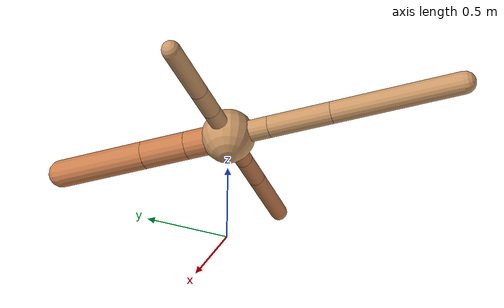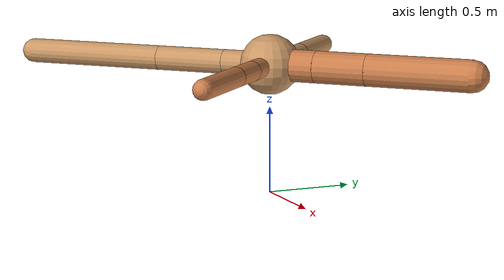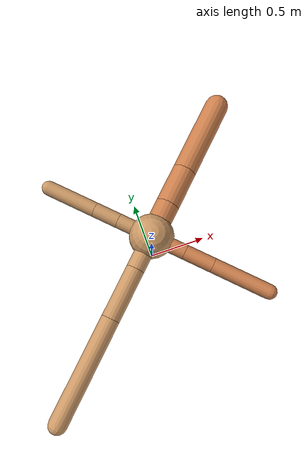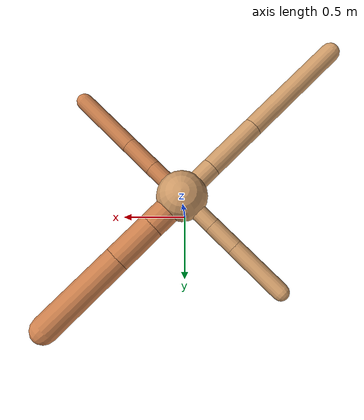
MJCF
<?xml version="1.0" ?>
<mujoco model="ant">

	<compiler angle="degree" coordinate="local" inertiafromgeom="true"/>

	<option integrator="RK4" timestep="0.01"/>

	<custom>

		<numeric data="0.0 0.0 0.55 1.0 0.0 0.0 0.0 0.0 1.0 0.0 -1.0 0.0 -1.0 0.0 1.0" name="init_qpos"/>

	</custom>

	<default>

		<joint armature="1" damping="1" limited="true"/>

		<geom conaffinity="0" condim="3" density="5.0" friction="1.5 0.1 0.1" margin="0.01" rgba="0.8 0.6 0.4 1"/>

	</default>

	<worldbody>

		<body name="torso" pos="0 0 0.75">

			<geom name="torso_geom" pos="0 0 0" size="0.17448714730400988" type="sphere"/>

			<!--joint armature="0" damping="0" limited="false" margin="0.01" name="root" pos="0 0 0" type="free"/-->

			<body name="front_left_leg" pos="0 0 0">

				<geom fromto="0 0 0 0.2 0.2 0" name="aux_1_geom" size="0.0929449945753492" type="capsule" rgba=".8 .5 .3 1"/>

				<body name="aux_1" pos="0.2 0.2 0">

					<joint axis="0 0 1" name="hip_1" pos="0.0 0.0 0.0" range="-40 40" type="hinge"/>

					<geom fromto="0 0 0 0.21716992972987656 0.21716992972987656 0" name="left_leg_geom" size="0.0929449945753492" type="capsule" rgba=".8 .5 .3 1"/>

					<body pos="0.21716992972987656 0.21716992972987656 0" name="front_left_foot">

						<joint axis="-1 1 0" name="ankle_1" pos="0.0 0.0 0.0" range="30 100" type="hinge"/>

						<geom fromto="0 0 0 0.4343398594597531 0.4343398594597531 0" name="left_ankle_geom" size="0.0929449945753492" type="capsule" rgba=".8 .5 .3 1"/>

					</body>

				</body>

			</body>

			<body name="front_right_leg" pos="0 0 0">

				<geom fromto="0 0 0 -0.2 0.2 0" name="aux_2_geom" size="0.05779579820312313" type="capsule"/>

				<body name="aux_2" pos="-0.2 0.2 0">

					<joint axis="0 0 1" name="hip_2" pos="0.0 0.0 0.0" range="-40 40" type="hinge"/>

					<geom fromto="0 0 0 -0.14307143542405373 0.14307143542405373 0" name="right_leg_geom" size="0.05779579820312313" type="capsule"/>

					<body pos="-0.14307143542405373 0.14307143542405373 0" name="front_right_foot">

						<joint axis="1 1 0" name="ankle_2" pos="0.0 0.0 0.0" range="-100 -30" type="hinge"/>

						<geom fromto="0 0 0 -0.28614287084810747 0.28614287084810747 0" name="right_ankle_geom" size="0.05779579820312313" type="capsule"/>

					</body>

				</body>

			</body>

			<body name="left_back_leg" pos="0 0 0">

				<geom fromto="0 0 0 -0.2 -0.2 0" name="aux_3_geom" size="0.07085958999280606" type="capsule"/>

				<body name="aux_3" pos="-0.2 -0.2 0">

					<joint axis="0 0 1" name="hip_3" pos="0.0 0.0 0.0" range="-40 40" type="hinge"/>

					<geom fromto="0 0 0 -0.29229019823411134 -0.29229019823411134 0" name="back_leg_geom" size="0.07085958999280606" type="capsule"/>

					<body pos="-0.29229019823411134 -0.29229019823411134 0" name="left_back_foot">

						<joint axis="-1 1 0" name="ankle_3" pos="0.0 0.0 0.0" range="-100 -30" type="hinge"/>

						<geom fromto="0 0 0 -0.5845803964682227 -0.5845803964682227 0" name="third_ankle_geom" size="0.07085958999280606" type="capsule"/>

					</body>

				</body>

			</body>

			<body name="right_back_leg" pos="0 0 0">

				<geom fromto="0 0 0 0.2 -0.2 0" name="aux_4_geom" size="0.05842778478654842" type="capsule" rgba=".8 .5 .3 1"/>

				<body name="aux_4" pos="0.2 -0.2 0">

					<joint axis="0 0 1" name="hip_4" pos="0.0 0.0 0.0" range="-40 40" type="hinge"/>

					<geom fromto="0 0 0 0.1636114093878971 -0.1636114093878971 0" name="rightback_leg_geom" size="0.05842778478654842" type="capsule" rgba=".8 .5 .3 1"/>

					<body pos="0.1636114093878971 -0.1636114093878971 0" name="right_back_foot">

						<joint axis="1 1 0" name="ankle_4" pos="0.0 0.0 0.0" range="30 100" type="hinge"/>

						<geom fromto="0 0 0 0.3272228187757942 -0.3272228187757942 0" name="fourth_ankle_geom" size="0.05842778478654842" type="capsule" rgba=".8 .5 .3 1"/>

					</body>

				</body>

			</body>

		</body>

	</worldbody>

	<actuator>

		<motor ctrllimited="true" ctrlrange="-1.0 1.0" joint="hip_4" gear="150"/>

		<motor ctrllimited="true" ctrlrange="-1.0 1.0" joint="ankle_4" gear="150"/>

		<motor ctrllimited="true" ctrlrange="-1.0 1.0" joint="hip_1" gear="150"/>

		<motor ctrllimited="true" ctrlrange="-1.0 1.0" joint="ankle_1" gear="150"/>

		<motor ctrllimited="true" ctrlrange="-1.0 1.0" joint="hip_2" gear="150"/>

		<motor ctrllimited="true" ctrlrange="-1.0 1.0" joint="ankle_2" gear="150"/>

		<motor ctrllimited="true" ctrlrange="-1.0 1.0" joint="hip_3" gear="150"/>

		<motor ctrllimited="true" ctrlrange="-1.0 1.0" joint="ankle_3" gear="150"/>

	</actuator>

</mujoco>
